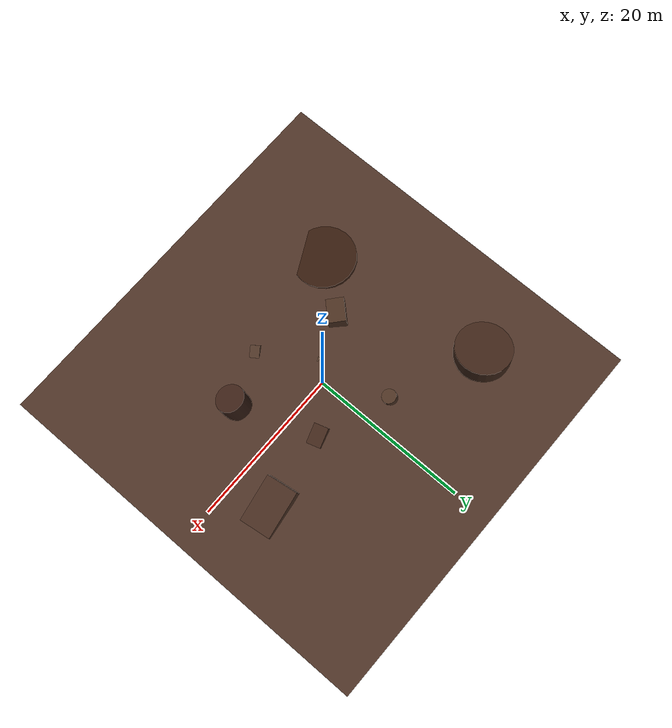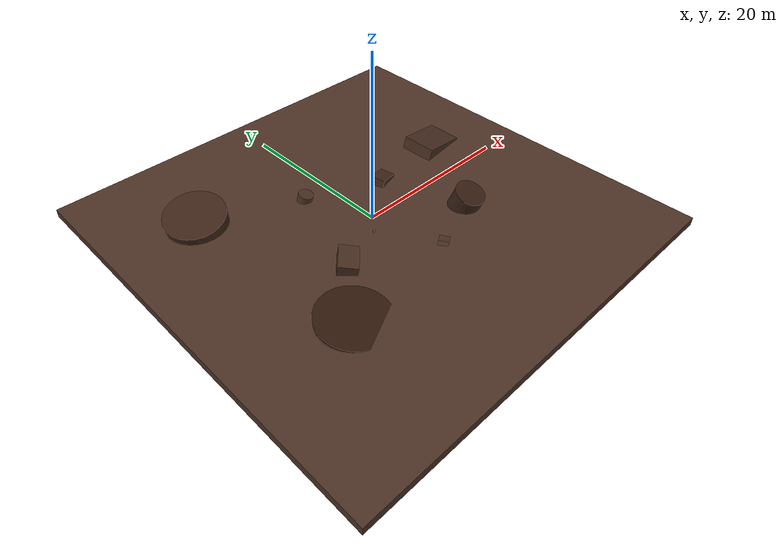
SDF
<?xml version="1.0" ?>
<sdf version="1.9">
  <world name="volcanic_world">

    <!-- World physics settings for gz sim -->
    <physics name="1ms" type="ignored">
      <max_step_size>0.001</max_step_size>
      <real_time_factor>1.0</real_time_factor>
    </physics>

    <!-- Physics plugin for new Gazebo -->
    <plugin filename="gz-sim-physics-system" name="gz::sim::systems::Physics">
    </plugin>

    <!-- User commands plugin -->
    <plugin filename="gz-sim-user-commands-system" name="gz::sim::systems::UserCommands">
    </plugin>

    <!-- Scene broadcaster -->
    <plugin filename="gz-sim-scene-broadcaster-system" name="gz::sim::systems::SceneBroadcaster">
    </plugin>

    <!-- Contact system -->
    <plugin filename="gz-sim-contact-system" name="gz::sim::systems::Contact">
    </plugin>

    <!-- Global light source -->
    <light name="sun" type="directional">
      <pose>0 0 10 0 0 0</pose>
      <diffuse>0.8 0.8 0.8 1</diffuse>
      <specular>0.2 0.2 0.2 1</specular>
      <attenuation>
        <range>1000</range>
        <constant>0.9</constant>
        <linear>0.01</linear>
        <quadratic>0.001</quadratic>
      </attenuation>
      <direction>-0.5 0.1 -0.9</direction>
      <cast_shadows>true</cast_shadows>
    </light>

    <!-- Atmospheric settings for volcanic environment -->
    <scene>
      <ambient>0.4 0.4 0.4 1</ambient>
      <background>0.7 0.7 0.7 1</background>
      <shadows>true</shadows>
      <grid>false</grid>
    </scene>

    <!-- Volcanic surface model embedded directly -->
    <model name="volcanic_surface">

      <!-- Main volcanic ground plane -->
      <link name="volcanic_ground">
        <pose>0 0 0 0 0 0</pose>
        <visual name="ground_visual">
          <geometry>
            <box>
              <size>50 50 1</size>
            </box>
          </geometry>
          <material>
            <ambient>0.3 0.2 0.15 1</ambient>
            <diffuse>0.3 0.2 0.15 1</diffuse>
            <specular>0.1 0.1 0.1 1</specular>
          </material>
        </visual>
        <collision name="ground_collision">
          <geometry>
            <box>
              <size>50 50 1</size>
            </box>
          </geometry>
        </collision>
      </link>

      <!-- Large volcanic rocks -->
      <link name="large_rock_1">
        <pose>5.2 3.8 0.6 0.1 0.2 0.3</pose>
        <visual name="rock1_visual">
          <geometry>
            <box>
              <size>2.5 1.8 1.2</size>
            </box>
          </geometry>
          <material>
            <ambient>0.25 0.15 0.1 1</ambient>
            <diffuse>0.25 0.15 0.1 1</diffuse>
            <specular>0.1 0.1 0.1 1</specular>
          </material>
        </visual>
        <collision name="rock1_collision">
          <geometry>
            <box>
              <size>2.5 1.8 1.2</size>
            </box>
          </geometry>
        </collision>
      </link>

      <link name="large_rock_2">
        <pose>-7.5 -4.2 0.9 0.15 -0.1 0.8</pose>
        <visual name="rock2_visual">
          <geometry>
            <box>
              <size>3.1 2.2 1.8</size>
            </box>
          </geometry>
          <material>
            <ambient>0.28 0.18 0.12 1</ambient>
            <diffuse>0.28 0.18 0.12 1</diffuse>
            <specular>0.1 0.1 0.1 1</specular>
          </material>
        </visual>
        <collision name="rock2_collision">
          <geometry>
            <box>
              <size>3.1 2.2 1.8</size>
            </box>
          </geometry>
        </collision>
      </link>

      <link name="large_rock_3">
        <pose>8.7 -6.1 1.25 0.3 0.2 -0.4</pose>
        <visual name="rock3_visual">
          <geometry>
            <cylinder>
              <radius>1.8</radius>
              <length>2.5</length>
            </cylinder>
          </geometry>
          <material>
            <ambient>0.22 0.12 0.08 1</ambient>
            <diffuse>0.22 0.12 0.08 1</diffuse>
            <specular>0.1 0.1 0.1 1</specular>
          </material>
        </visual>
        <collision name="rock3_collision">
          <geometry>
            <cylinder>
              <radius>1.8</radius>
              <length>2.5</length>
            </cylinder>
          </geometry>
        </collision>
      </link>

      <!-- Medium rocks -->
      <link name="medium_rock_1">
        <pose>2.3 -8.5 0.4 0.1 0.3 0.6</pose>
        <visual name="med_rock1_visual">
          <geometry>
            <box>
              <size>1.5 1.2 0.8</size>
            </box>
          </geometry>
          <material>
            <ambient>0.32 0.22 0.16 1</ambient>
            <diffuse>0.32 0.22 0.16 1</diffuse>
            <specular>0.1 0.1 0.1 1</specular>
          </material>
        </visual>
        <collision name="med_rock1_collision">
          <geometry>
            <box>
              <size>1.5 1.2 0.8</size>
            </box>
          </geometry>
        </collision>
      </link>

      <link name="medium_rock_2">
        <pose>-3.7 7.2 0.65 0.2 -0.15 1.3</pose>
        <visual name="med_rock2_visual">
          <geometry>
            <cylinder>
              <radius>0.9</radius>
              <length>1.3</length>
            </cylinder>
          </geometry>
          <material>
            <ambient>0.29 0.19 0.13 1</ambient>
            <diffuse>0.29 0.19 0.13 1</diffuse>
            <specular>0.1 0.1 0.1 1</specular>
          </material>
        </visual>
        <collision name="med_rock2_collision">
          <geometry>
            <cylinder>
              <radius>0.9</radius>
              <length>1.3</length>
            </cylinder>
          </geometry>
        </collision>
      </link>

      <!-- Small scattered stones -->
      <link name="small_stone_1">
        <pose>1.2 5.7 0.15 0.1 0.2 0.8</pose>
        <visual name="stone1_visual">
          <geometry>
            <box>
              <size>0.6 0.4 0.3</size>
            </box>
          </geometry>
          <material>
            <ambient>0.35 0.25 0.18 1</ambient>
            <diffuse>0.35 0.25 0.18 1</diffuse>
            <specular>0.1 0.1 0.1 1</specular>
          </material>
        </visual>
        <collision name="stone1_collision">
          <geometry>
            <box>
              <size>0.6 0.4 0.3</size>
            </box>
          </geometry>
        </collision>
      </link>

      <link name="small_stone_2">
        <pose>-1.8 -2.3 0.25 0.15 -0.1 1.1</pose>
        <visual name="stone2_visual">
          <geometry>
            <cylinder>
              <radius>0.3</radius>
              <length>0.5</length>
            </cylinder>
          </geometry>
          <material>
            <ambient>0.33 0.23 0.17 1</ambient>
            <diffuse>0.33 0.23 0.17 1</diffuse>
            <specular>0.1 0.1 0.1 1</specular>
          </material>
        </visual>
        <collision name="stone2_collision">
          <geometry>
            <cylinder>
              <radius>0.3</radius>
              <length>0.5</length>
            </cylinder>
          </geometry>
        </collision>
      </link>

      <!-- Volcanic crater -->
      <link name="crater_rim_1">
        <pose>-12.0 -10.0 0.4 0.1 0.05 0</pose>
        <visual name="crater_visual">
          <geometry>
            <cylinder>
              <radius>4.0</radius>
              <length>0.8</length>
            </cylinder>
          </geometry>
          <material>
            <ambient>0.2 0.1 0.05 1</ambient>
            <diffuse>0.2 0.1 0.05 1</diffuse>
            <specular>0.05 0.05 0.05 1</specular>
          </material>
        </visual>
        <collision name="crater_collision">
          <geometry>
            <cylinder>
              <radius>4.0</radius>
              <length>0.8</length>
            </cylinder>
          </geometry>
        </collision>
      </link>

      <!-- Uneven terrain patches -->
      <link name="terrain_bump_1">
        <pose>15.0 5.0 0.75 0.1 0.2 0.15</pose>
        <visual name="bump1_visual">
          <geometry>
            <box>
              <size>6.0 4.0 1.5</size>
            </box>
          </geometry>
          <material>
            <ambient>0.27 0.17 0.12 1</ambient>
            <diffuse>0.27 0.17 0.12 1</diffuse>
            <specular>0.1 0.1 0.1 1</specular>
          </material>
        </visual>
        <collision name="bump1_collision">
          <geometry>
            <box>
              <size>6.0 4.0 1.5</size>
            </box>
          </geometry>
        </collision>
      </link>

      <link name="terrain_bump_2">
        <pose>-15.0 12.0 1.0 0.15 -0.1 -0.3</pose>
        <visual name="bump2_visual">
          <geometry>
            <cylinder>
              <radius>3.5</radius>
              <length>2.0</length>
            </cylinder>
          </geometry>
          <material>
            <ambient>0.24 0.14 0.09 1</ambient>
            <diffuse>0.24 0.14 0.09 1</diffuse>
            <specular>0.1 0.1 0.1 1</specular>
          </material>
        </visual>
        <collision name="bump2_collision">
          <geometry>
            <cylinder>
              <radius>3.5</radius>
              <length>2.0</length>
            </cylinder>
          </geometry>
        </collision>
      </link>

    </model>

  </world>
</sdf>
